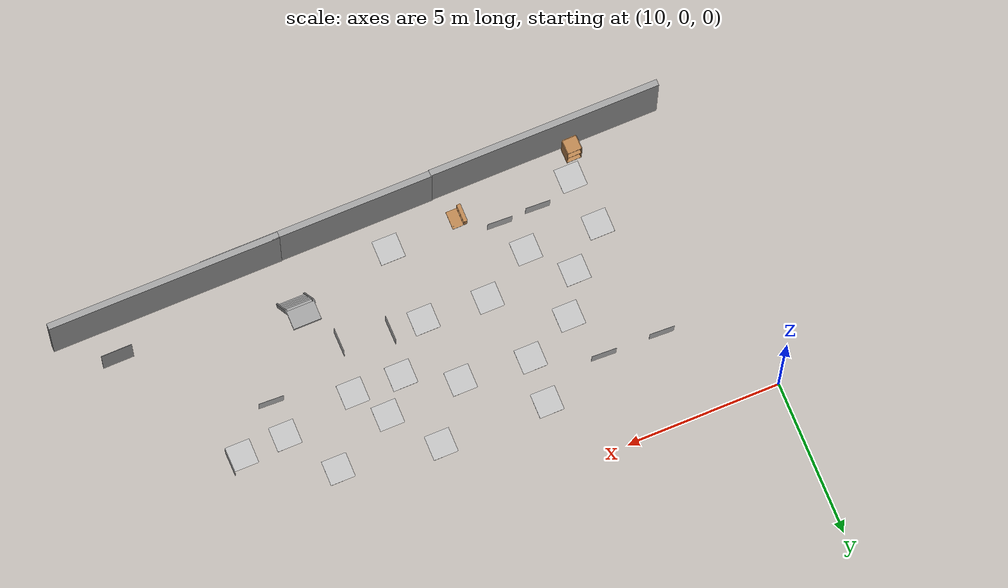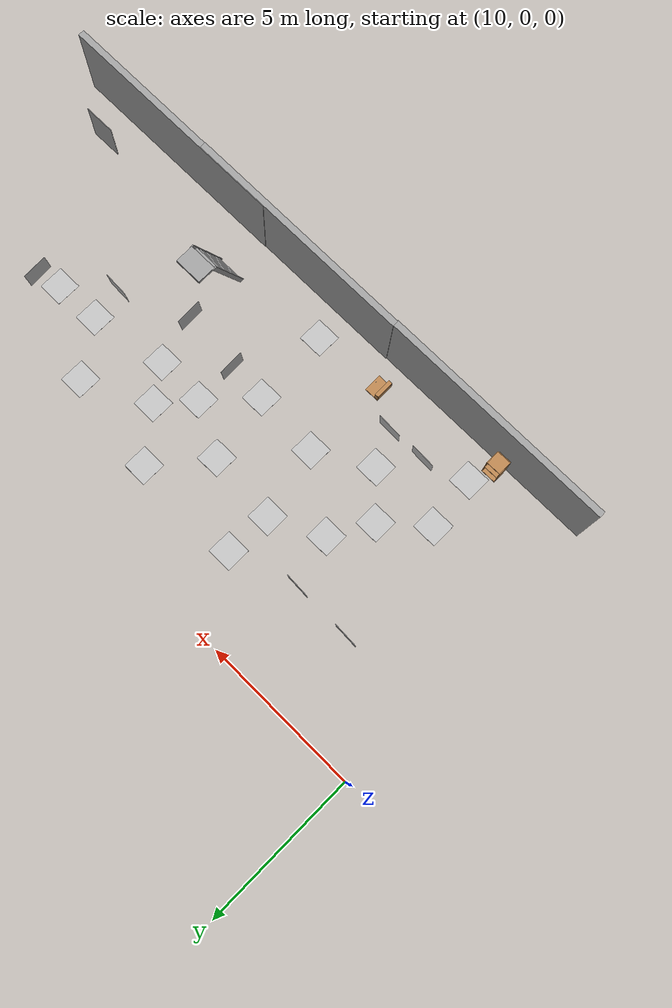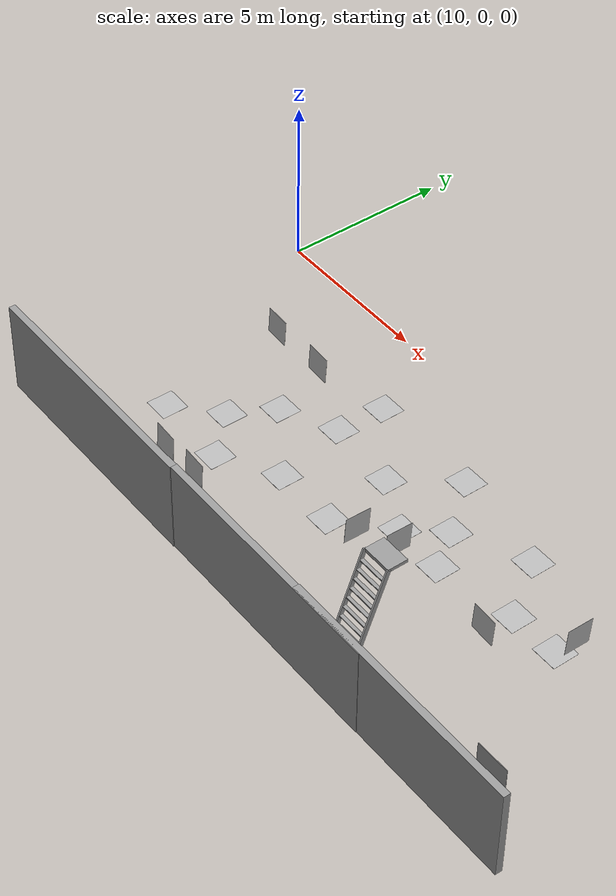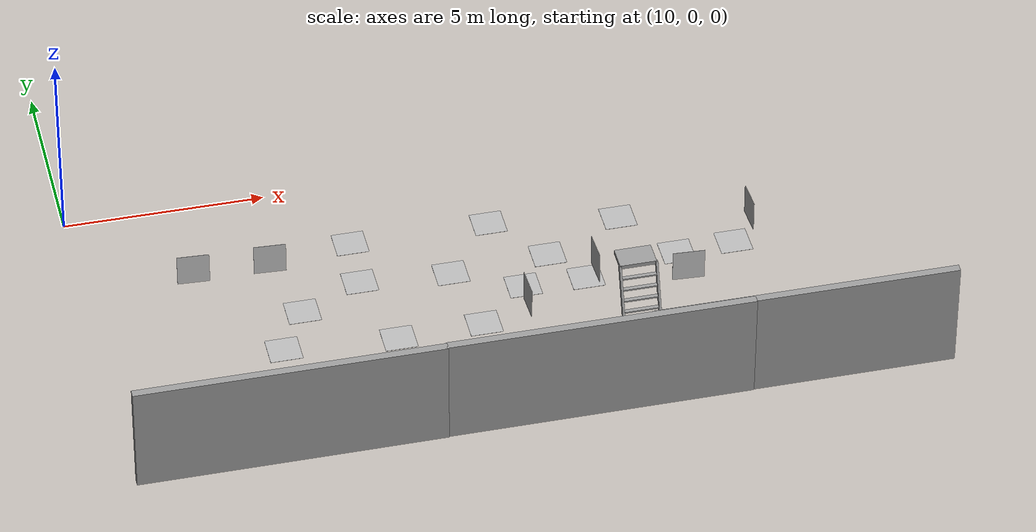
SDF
<sdf version="1.6">
 <world name="factory">
  <model name="ladder_70deg_0rails">
   <static>1</static>
   <link name="step0">
    <pose>0 0.097059 0.266667 0 -0 0</pose>
    <inertial>
     <mass>9.75482</mass>
     <inertia>
      <ixx>0.00957124</ixx>
      <iyy>0.65963</iyy>
      <izz>0.666842</izz>
      <ixy>0</ixy>
      <ixz>0</ixz>
      <iyz>0</iyz>
     </inertia>
    </inertial>
    <collision name="collision"><geometry><box><size>0.9 0.1016 0.0381</size></box></geometry></collision>
    <visual name="visual">
     <geometry><box><size>0.9 0.1016 0.0381</size></box></geometry>
     <material>
      <script><uri>file://media/materials/scripts/gazebo.material</uri><name>Gazebo/Grey</name></script>
     </material>
    </visual>
   </link>
   <link name="step1">
    <pose>0 0.194117 0.533333 0 -0 0</pose>
    <inertial>
     <mass>9.75482</mass>
     <inertia>
      <ixx>0.00957124</ixx>
      <iyy>0.65963</iyy>
      <izz>0.666842</izz>
      <ixy>0</ixy>
      <ixz>0</ixz>
      <iyz>0</iyz>
     </inertia>
    </inertial>
    <collision name="collision"><geometry><box><size>0.9 0.1016 0.0381</size></box></geometry></collision>
    <visual name="visual">
     <geometry><box><size>0.9 0.1016 0.0381</size></box></geometry>
     <material>
      <script><uri>file://media/materials/scripts/gazebo.material</uri><name>Gazebo/Grey</name></script>
     </material>
    </visual>
   </link>
   <link name="step2">
    <pose>0 0.291176 0.8 0 -0 0</pose>
    <inertial>
     <mass>9.75482</mass>
     <inertia>
      <ixx>0.00957124</ixx>
      <iyy>0.65963</iyy>
      <izz>0.666842</izz>
      <ixy>0</ixy>
      <ixz>0</ixz>
      <iyz>0</iyz>
     </inertia>
    </inertial>
    <collision name="collision"><geometry><box><size>0.9 0.1016 0.0381</size></box></geometry></collision>
    <visual name="visual">
     <geometry><box><size>0.9 0.1016 0.0381</size></box></geometry>
     <material>
      <script><uri>file://media/materials/scripts/gazebo.material</uri><name>Gazebo/Grey</name></script>
     </material>
    </visual>
   </link>
   <link name="step3">
    <pose>0 0.388235 1.06667 0 -0 0</pose>
    <inertial>
     <mass>9.75482</mass>
     <inertia>
      <ixx>0.00957124</ixx>
      <iyy>0.65963</iyy>
      <izz>0.666842</izz>
      <ixy>0</ixy>
      <ixz>0</ixz>
      <iyz>0</iyz>
     </inertia>
    </inertial>
    <collision name="collision"><geometry><box><size>0.9 0.1016 0.0381</size></box></geometry></collision>
    <visual name="visual">
     <geometry><box><size>0.9 0.1016 0.0381</size></box></geometry>
     <material>
      <script><uri>file://media/materials/scripts/gazebo.material</uri><name>Gazebo/Grey</name></script>
     </material>
    </visual>
   </link>
   <link name="step4">
    <pose>0 0.485294 1.33333 0 -0 0</pose>
    <inertial>
     <mass>9.75482</mass>
     <inertia>
      <ixx>0.00957124</ixx>
      <iyy>0.65963</iyy>
      <izz>0.666842</izz>
      <ixy>0</ixy>
      <ixz>0</ixz>
      <iyz>0</iyz>
     </inertia>
    </inertial>
    <collision name="collision"><geometry><box><size>0.9 0.1016 0.0381</size></box></geometry></collision>
    <visual name="visual">
     <geometry><box><size>0.9 0.1016 0.0381</size></box></geometry>
     <material>
      <script><uri>file://media/materials/scripts/gazebo.material</uri><name>Gazebo/Grey</name></script>
     </material>
    </visual>
   </link>
   <link name="step5">
    <pose>0 0.582352 1.6 0 -0 0</pose>
    <inertial>
     <mass>9.75482</mass>
     <inertia>
      <ixx>0.00957124</ixx>
      <iyy>0.65963</iyy>
      <izz>0.666842</izz>
      <ixy>0</ixy>
      <ixz>0</ixz>
      <iyz>0</iyz>
     </inertia>
    </inertial>
    <collision name="collision"><geometry><box><size>0.9 0.1016 0.0381</size></box></geometry></collision>
    <visual name="visual">
     <geometry><box><size>0.9 0.1016 0.0381</size></box></geometry>
     <material>
      <script><uri>file://media/materials/scripts/gazebo.material</uri><name>Gazebo/Grey</name></script>
     </material>
    </visual>
   </link>
   <link name="step6">
    <pose>0 0.679411 1.86667 0 -0 0</pose>
    <inertial>
     <mass>9.75482</mass>
     <inertia>
      <ixx>0.00957124</ixx>
      <iyy>0.65963</iyy>
      <izz>0.666842</izz>
      <ixy>0</ixy>
      <ixz>0</ixz>
      <iyz>0</iyz>
     </inertia>
    </inertial>
    <collision name="collision"><geometry><box><size>0.9 0.1016 0.0381</size></box></geometry></collision>
    <visual name="visual">
     <geometry><box><size>0.9 0.1016 0.0381</size></box></geometry>
     <material>
      <script><uri>file://media/materials/scripts/gazebo.material</uri><name>Gazebo/Grey</name></script>
     </material>
    </visual>
   </link>
   <link name="step7">
    <pose>0 0.77647 2.13333 0 -0 0</pose>
    <inertial>
     <mass>9.75482</mass>
     <inertia>
      <ixx>0.00957124</ixx>
      <iyy>0.65963</iyy>
      <izz>0.666842</izz>
      <ixy>0</ixy>
      <ixz>0</ixz>
      <iyz>0</iyz>
     </inertia>
    </inertial>
    <collision name="collision"><geometry><box><size>0.9 0.1016 0.0381</size></box></geometry></collision>
    <visual name="visual">
     <geometry><box><size>0.9 0.1016 0.0381</size></box></geometry>
     <material>
      <script><uri>file://media/materials/scripts/gazebo.material</uri><name>Gazebo/Grey</name></script>
     </material>
    </visual>
   </link>
   <link name="landing">
    <pose>0 1.17353 2.4 0 -0 0</pose>
    <inertial>
     <mass>57.6072</mass>
     <inertia><ixx>1.73518</ixx><iyy>3.89545</iyy><izz>5.6167</izz><ixy>0</ixy><ixz>0</ixz><iyz>0</iyz></inertia>
    </inertial>
    <collision name="collision"><geometry><box><size>0.9 0.6 0.1016</size></box></geometry></collision>
    <visual name="visual">
     <geometry><box><size>0.9 0.6 0.1016</size></box></geometry>
     <material>
      <script><uri>file://media/materials/scripts/gazebo.material</uri><name>Gazebo/Grey</name></script>
     </material>
    </visual>
   </link>
   <link name="left_side_wall">
    <pose>-0.45 0.436764 1.2 1.22173 -0 0</pose>
    <collision name="collision"><geometry><box><size>0.0508 2.63403 0.13</size></box></geometry></collision>
    <visual name="visual">
     <geometry><box><size>0.0508 2.63403 0.13</size></box></geometry>
     <material>
      <script><uri>file://media/materials/scripts/gazebo.material</uri><name>Gazebo/Grey</name></script>
     </material>
    </visual>
   </link>
   <link name="right_side_wall">
    <pose>0.45 0.436764 1.2 1.22173 -0 0</pose>
    <collision name="collision"><geometry><box><size>0.0508 2.63403 0.13</size></box></geometry></collision>
    <visual name="visual">
     <geometry><box><size>0.0508 2.63403 0.13</size></box></geometry>
     <material>
      <script><uri>file://media/materials/scripts/gazebo.material</uri><name>Gazebo/Grey</name></script>
     </material>
    </visual>
   </link>
   <pose>22.7475 -8.13571 0 0 -0 0</pose>
  </model>
  <model name="grey_wall_clone_0">
   <static>1</static>
   <link name="link">
    <pose>0 0 1.4 0 -0 0</pose>
    <collision name="collision"><geometry><box><size>7.5 0.2 2.8</size></box></geometry></collision>
    <visual name="visual">
     <cast_shadows>0</cast_shadows>
     <geometry><box><size>7.5 0.2 2.8</size></box></geometry>
     <material>
      <script>
       <uri>model://grey_wall/materials/scripts</uri>
       <uri>model://grey_wall/materials/textures</uri>
       <name>vrc/grey_wall</name>
      </script>
     </material>
    </visual>
   </link>
   <pose>13.8347 -9.52636 0 0 -0 0</pose>
  </model>
  <model name="grey_wall_clone_1">
   <static>1</static>
   <link name="link">
    <pose>0 0 1.4 0 -0 0</pose>
    <collision name="collision"><geometry><box><size>7.5 0.2 2.8</size></box></geometry></collision>
    <visual name="visual">
     <cast_shadows>0</cast_shadows>
     <geometry><box><size>7.5 0.2 2.8</size></box></geometry>
     <material>
      <script>
       <uri>model://grey_wall/materials/scripts</uri>
       <uri>model://grey_wall/materials/textures</uri>
       <name>vrc/grey_wall</name>
      </script>
     </material>
    </visual>
   </link>
   <pose>21.3028 -9.50574 0 0 -0 0</pose>
  </model>
  <model name="grey_wall_clone_2">
   <static>1</static>
   <link name="link">
    <pose>0 0 1.4 0 -0 0</pose>
    <collision name="collision"><geometry><box><size>7.5 0.2 2.8</size></box></geometry></collision>
    <visual name="visual">
     <cast_shadows>0</cast_shadows>
     <geometry><box><size>7.5 0.2 2.8</size></box></geometry>
     <material>
      <script>
       <uri>model://grey_wall/materials/scripts</uri>
       <uri>model://grey_wall/materials/textures</uri>
       <name>vrc/grey_wall</name>
      </script>
     </material>
    </visual>
   </link>
   <pose>26.2939 -9.49059 0 0 -0 0</pose>
  </model>
  <model name="unit_box">
   <pose>28.3446 -8.3382 0.751562 -0 -1e-06 0.005665</pose>
   <link name="link">
    <inertial>
     <mass>1</mass>
     <inertia>
      <ixx>0.166667</ixx>
      <ixy>0</ixy>
      <ixz>0</ixz>
      <iyy>0.166667</iyy>
      <iyz>0</iyz>
      <izz>0.166667</izz>
     </inertia>
    </inertial>
    <collision name="collision"><geometry><box><size>1 0.0133954 1.50312</size></box></geometry></collision>
    <visual name="visual">
     <geometry><box><size>1 0.0133954 1.50312</size></box></geometry>
     <material>
      <script><name>Gazebo/Grey</name><uri>file://media/materials/scripts/gazebo.material</uri></script>
     </material>
    </visual>
   </link>
  </model>
  <model name="cabinet">
   <static>1</static>
   <link name="cabinet_bottom_plate">
    <inertial>
     <pose>0 0 -1 0 -0 0</pose>
     <inertia><ixx>2.05</ixx><ixy>0</ixy><ixz>0</ixz><iyy>2.05</iyy><iyz>0</iyz><izz>2.05</izz></inertia>
     <mass>25</mass>
    </inertial>
    <collision name="cabinet_bottom_plate_geom">
     <pose>0 0 0.01 0 -0 0</pose>
     <geometry><box><size>0.45 0.45 0.02</size></box></geometry>
    </collision>
    <visual name="cabinet_bottom_plate_geom_visual">
     <pose>0 0 0.01 0 -0 0</pose>
     <geometry><box><size>0.45 0.45 0.02</size></box></geometry>
     <material>
      <script><uri>file://media/materials/scripts/gazebo.material</uri><name>Gazebo/Wood</name></script>
     </material>
    </visual>
    <collision name="cabinet_bottom_plate_geom_cabinet_back_plate">
     <pose>0.235 0 0.51 0 -0 0</pose>
     <geometry><box><size>0.02 0.45 1.02</size></box></geometry>
    </collision>
    <visual name="cabinet_bottom_plate_geom_cabinet_back_plate_visual">
     <pose>0.235 0 0.51 0 -0 0</pose>
     <geometry><box><size>0.02 0.45 1.02</size></box></geometry>
     <material>
      <script><uri>file://media/materials/scripts/gazebo.material</uri><name>Gazebo/Wood</name></script>
     </material>
    </visual>
    <collision name="cabinet_bottom_plate_geom_cabinet_left_plate">
     <pose>0 0.235 0.51 0 -0 0</pose>
     <geometry><box><size>0.45 0.02 1.02</size></box></geometry>
    </collision>
    <visual name="cabinet_bottom_plate_geom_cabinet_left_plate_visual">
     <pose>0 0.235 0.51 0 -0 0</pose>
     <geometry><box><size>0.45 0.02 1.02</size></box></geometry>
     <material>
      <script><uri>file://media/materials/scripts/gazebo.material</uri><name>Gazebo/Wood</name></script>
     </material>
    </visual>
    <collision name="cabinet_bottom_plate_geom_cabinet_middle_plate">
     <pose>0 0 0.51 0 -0 0</pose>
     <geometry><box><size>0.45 0.45 0.02</size></box></geometry>
    </collision>
    <visual name="cabinet_bottom_plate_geom_cabinet_middle_plate_visual">
     <pose>0 0 0.51 0 -0 0</pose>
     <geometry><box><size>0.45 0.45 0.02</size></box></geometry>
     <material>
      <script><uri>file://media/materials/scripts/gazebo.material</uri><name>Gazebo/Wood</name></script>
     </material>
    </visual>
    <collision name="cabinet_bottom_plate_geom_cabinet_right_plate">
     <pose>0 -0.235 0.51 0 -0 0</pose>
     <geometry><box><size>0.45 0.02 1.02</size></box></geometry>
    </collision>
    <visual name="cabinet_bottom_plate_geom_cabinet_right_plate_visual">
     <pose>0 -0.235 0.51 0 -0 0</pose>
     <geometry><box><size>0.45 0.02 1.02</size></box></geometry>
     <material>
      <script><uri>file://media/materials/scripts/gazebo.material</uri><name>Gazebo/Wood</name></script>
     </material>
    </visual>
    <collision name="cabinet_bottom_plate_geom_cabinet_top_plate">
     <pose>0 0 1.01 0 -0 0</pose>
     <geometry><box><size>0.45 0.45 0.02</size></box></geometry>
    </collision>
    <visual name="cabinet_bottom_plate_geom_cabinet_top_plate_visual">
     <pose>0 0 1.01 0 -0 0</pose>
     <geometry><box><size>0.45 0.45 0.02</size></box></geometry>
     <material>
      <script><uri>file://media/materials/scripts/gazebo.material</uri><name>Gazebo/Wood</name></script>
     </material>
    </visual>
   </link>
   <pose>13.0394 -9.13497 0.037072 0 0 -1.55676</pose>
  </model>
  <model name="wooden_case">
   <link name="base">
    <pose>0 0 0.024 0 -0 0</pose>
    <inertial>
     <pose>-0.022184 0 0.171592 0 -0 0</pose>
     <mass>3.96264</mass>
     <inertia>
      <ixx>0.213536</ixx>
      <ixy>0</ixy>
      <ixz>0.000779377</ixz>
      <iyy>0.0708943</iyy>
      <iyz>0</iyz>
      <izz>0.154604</izz>
     </inertia>
    </inertial>
    <collision name="collision_back">
     <pose>-0.053975 0 0.1778 0 -0 0</pose>
     <geometry><box><size>0.01905 0.5461 0.3175</size></box></geometry>
     <surface>
      <contact>
       <poissons_ratio>0.347</poissons_ratio>
       <elastic_modulus>8.8e+09</elastic_modulus>
       <ode><kp>100000</kp><kd>100</kd><max_vel>100</max_vel><min_depth>0.001</min_depth></ode>
      </contact>
      <friction>
       <torsional>
        <coefficient>1</coefficient>
        <use_patch_radius>0</use_patch_radius>
        <surface_radius>0.01</surface_radius>
       </torsional>
      </friction>
     </surface>
    </collision>
    <visual name="visual_back">
     <pose>-0.053975 0 0.1778 0 -0 0</pose>
     <geometry><box><size>0.01905 0.5461 0.3175</size></box></geometry>
     <material>
      <script><uri>file://media/materials/scripts/gazebo.material</uri><name>Gazebo/Wood</name></script>
     </material>
    </visual>
    <collision name="collision_bottom">
     <pose>0 0 0.009525 0 -0 0</pose>
     <geometry><box><size>0.127 0.5842 0.01905</size></box></geometry>
     <surface>
      <contact>
       <poissons_ratio>0.347</poissons_ratio>
       <elastic_modulus>8.8e+09</elastic_modulus>
       <ode><kp>100000</kp><kd>100</kd><max_vel>100</max_vel><min_depth>0.001</min_depth></ode>
      </contact>
      <friction>
       <torsional>
        <coefficient>1</coefficient>
        <use_patch_radius>0</use_patch_radius>
        <surface_radius>0.01</surface_radius>
       </torsional>
      </friction>
     </surface>
    </collision>
    <visual name="visual_bottom">
     <pose>0 0 0.009525 0 -0 0</pose>
     <geometry><box><size>0.127 0.5842 0.01905</size></box></geometry>
     <material>
      <script><uri>file://media/materials/scripts/gazebo.material</uri><name>Gazebo/Wood</name></script>
     </material>
    </visual>
    <collision name="collision_top">
     <pose>0 0 0.346075 0 -0 0</pose>
     <geometry><box><size>0.127 0.5842 0.01905</size></box></geometry>
     <surface>
      <contact>
       <poissons_ratio>0.347</poissons_ratio>
       <elastic_modulus>8.8e+09</elastic_modulus>
       <ode><kp>100000</kp><kd>100</kd><max_vel>100</max_vel><min_depth>0.001</min_depth></ode>
      </contact>
      <friction>
       <torsional>
        <coefficient>1</coefficient>
        <use_patch_radius>0</use_patch_radius>
        <surface_radius>0.01</surface_radius>
       </torsional>
      </friction>
     </surface>
    </collision>
    <visual name="visual_top">
     <pose>0 0 0.346075 0 -0 0</pose>
     <geometry><box><size>0.127 0.5842 0.01905</size></box></geometry>
     <material>
      <script><uri>file://media/materials/scripts/gazebo.material</uri><name>Gazebo/Wood</name></script>
     </material>
    </visual>
    <collision name="collision_left">
     <pose>0 -0.282575 0.1778 0 -0 0</pose>
     <geometry><box><size>0.127 0.01905 0.3175</size></box></geometry>
     <surface>
      <contact>
       <poissons_ratio>0.347</poissons_ratio>
       <elastic_modulus>8.8e+09</elastic_modulus>
       <ode><kp>100000</kp><kd>100</kd><max_vel>100</max_vel><min_depth>0.001</min_depth></ode>
      </contact>
      <friction>
       <torsional>
        <coefficient>1</coefficient>
        <use_patch_radius>0</use_patch_radius>
        <surface_radius>0.01</surface_radius>
       </torsional>
      </friction>
     </surface>
    </collision>
    <visual name="visual_left">
     <pose>0 -0.282575 0.1778 0 -0 0</pose>
     <geometry><box><size>0.127 0.01905 0.3175</size></box></geometry>
     <material>
      <script><uri>file://media/materials/scripts/gazebo.material</uri><name>Gazebo/Wood</name></script>
     </material>
    </visual>
    <collision name="collision_right">
     <pose>0 0.282575 0.1778 0 -0 0</pose>
     <geometry><box><size>0.127 0.01905 0.3175</size></box></geometry>
     <surface>
      <contact>
       <poissons_ratio>0.347</poissons_ratio>
       <elastic_modulus>8.8e+09</elastic_modulus>
       <ode><kp>100000</kp><kd>100</kd><max_vel>100</max_vel><min_depth>0.001</min_depth></ode>
      </contact>
      <friction>
       <torsional>
        <coefficient>1</coefficient>
        <use_patch_radius>0</use_patch_radius>
        <surface_radius>0.01</surface_radius>
       </torsional>
      </friction>
     </surface>
    </collision>
    <visual name="visual_right">
     <pose>0 0.282575 0.1778 0 -0 0</pose>
     <geometry><box><size>0.127 0.01905 0.3175</size></box></geometry>
     <material>
      <script><uri>file://media/materials/scripts/gazebo.material</uri><name>Gazebo/Wood</name></script>
     </material>
    </visual>
    <collision name="collision_block_left">
     <pose>0.0095 -0.2151 -0.012 0 -0 0</pose>
     <geometry><box><size>0.108 0.05 0.024</size></box></geometry>
     <surface>
      <contact>
       <poissons_ratio>0.347</poissons_ratio>
       <elastic_modulus>8.8e+09</elastic_modulus>
       <ode><kp>100000</kp><kd>100</kd><max_vel>100</max_vel><min_depth>0.001</min_depth></ode>
      </contact>
      <friction>
       <torsional>
        <coefficient>1</coefficient>
        <use_patch_radius>0</use_patch_radius>
        <surface_radius>0.01</surface_radius>
       </torsional>
      </friction>
     </surface>
    </collision>
    <visual name="visual_block_left">
     <pose>0.0095 -0.2151 -0.012 0 -0 0</pose>
     <geometry><box><size>0.108 0.05 0.024</size></box></geometry>
     <material>
      <script><uri>file://media/materials/scripts/gazebo.material</uri><name>Gazebo/Wood</name></script>
     </material>
    </visual>
    <collision name="collision_block_right">
     <pose>0.0095 0.2151 -0.012 0 -0 0</pose>
     <geometry><box><size>0.108 0.05 0.024</size></box></geometry>
     <surface>
      <contact>
       <poissons_ratio>0.347</poissons_ratio>
       <elastic_modulus>8.8e+09</elastic_modulus>
       <ode><kp>100000</kp><kd>100</kd><max_vel>100</max_vel><min_depth>0.001</min_depth></ode>
      </contact>
      <friction>
       <torsional>
        <coefficient>1</coefficient>
        <use_patch_radius>0</use_patch_radius>
        <surface_radius>0.01</surface_radius>
       </torsional>
      </friction>
     </surface>
    </collision>
    <visual name="visual_block_right">
     <pose>0.0095 0.2151 -0.012 0 -0 0</pose>
     <geometry><box><size>0.108 0.05 0.024</size></box></geometry>
     <material>
      <script><uri>file://media/materials/scripts/gazebo.material</uri><name>Gazebo/Wood</name></script>
     </material>
    </visual>
   </link>
   <link name="lid">
    <pose>0.243775 0 0.009525 0 -0 0</pose>
    <inertial>
     <mass>1.97874</mass>
     <inertia>
      <ixx>0.0563367</ixx>
      <ixy>0</ixy>
      <ixz>0</ixz>
      <iyy>0.020911</iyy>
      <iyz>0</iyz>
      <izz>0.0771281</izz>
     </inertia>
    </inertial>
    <collision name="collision">
     <geometry><box><size>0.3556 0.5842 0.01905</size></box></geometry>
     <surface>
      <contact>
       <poissons_ratio>0.347</poissons_ratio>
       <elastic_modulus>8.8e+09</elastic_modulus>
       <ode><kp>100000</kp><kd>100</kd><max_vel>100</max_vel><min_depth>0.001</min_depth></ode>
      </contact>
      <friction>
       <torsional>
        <coefficient>1</coefficient>
        <use_patch_radius>0</use_patch_radius>
        <surface_radius>0.01</surface_radius>
       </torsional>
      </friction>
     </surface>
    </collision>
    <visual name="visual">
     <geometry><box><size>0.3556 0.5842 0.01905</size></box></geometry>
     <material>
      <script><uri>file://media/materials/scripts/gazebo.material</uri><name>Gazebo/Wood</name></script>
     </material>
    </visual>
    <visual name="tee_nut_1">
     <pose>0.122 -0.216 0 0 -0 0</pose>
     <geometry><cylinder><radius>0.00635</radius><length>0.0192405</length></cylinder></geometry>
     <material>
      <script><uri>file://media/materials/scripts/gazebo.material</uri><name>Gazebo/Grey</name></script>
     </material>
    </visual>
    <visual name="tee_nut_2">
     <pose>0.122 -0.088 0 0 -0 0</pose>
     <geometry><cylinder><radius>0.00635</radius><length>0.0192405</length></cylinder></geometry>
     <material>
      <script><uri>file://media/materials/scripts/gazebo.material</uri><name>Gazebo/Grey</name></script>
     </material>
    </visual>
    <visual name="tee_nut_3">
     <pose>0.122 0.088 0 0 -0 0</pose>
     <geometry><cylinder><radius>0.00635</radius><length>0.0192405</length></cylinder></geometry>
     <material>
      <script><uri>file://media/materials/scripts/gazebo.material</uri><name>Gazebo/Grey</name></script>
     </material>
    </visual>
    <visual name="tee_nut_4">
     <pose>0.122 0.216 0 0 -0 0</pose>
     <geometry><cylinder><radius>0.00635</radius><length>0.0192405</length></cylinder></geometry>
     <material>
      <script><uri>file://media/materials/scripts/gazebo.material</uri><name>Gazebo/Grey</name></script>
     </material>
    </visual>
   </link>
   <joint name="lid_hinge" type="revolute">
    <pose>-0.1778 0 0.01905 0 -0 0</pose>
    <parent>base</parent>
    <child>lid</child>
    <axis>
     <xyz>0 1 0</xyz>
     <limit><upper>0.523599</upper><lower>-1.5708</lower></limit>
     <use_parent_model_frame>0</use_parent_model_frame>
     <dynamics><spring_reference>0</spring_reference><spring_stiffness>0</spring_stiffness></dynamics>
    </axis>
   </joint>
   <pose>16.9031 -8.59915 -0.001057 0 -0.000442 -1e-06</pose>
  </model>
  <model name="kalibr_tag_clone_0_clone_clone_clone_4">
   <static>1</static>
   <link name="link">
    <inertial>
     <mass>0.1</mass>
     <inertia>
      <ixx>0.000166667</ixx>
      <iyy>0.000166667</iyy>
      <izz>0.000166667</izz>
      <ixy>0</ixy>
      <ixz>0</ixz>
      <iyz>0</iyz>
     </inertia>
    </inertial>
    <collision name="collision"><geometry><box><size>0.8 0.8 0.005</size></box></geometry></collision>
    <visual name="visual">
     <geometry><box><size>0.8 0.8 0.005</size></box></geometry>
     <material>
      <script>
       <uri>model://kalibr_tag/materials/scripts</uri>
       <uri>model://kalibr_tag/materials/textures</uri>
       <name>Kalibr_tag/Diffuse</name>
      </script>
     </material>
    </visual>
   </link>
   <pose>21.3892 -3.67099 -0.000701 0 -0 0</pose>
  </model>
  <model name="kalibr_tag_clone_clone_clone_clone_clone_clone_clone_1">
   <static>1</static>
   <link name="link">
    <inertial>
     <mass>0.1</mass>
     <inertia>
      <ixx>0.000166667</ixx>
      <iyy>0.000166667</iyy>
      <izz>0.000166667</izz>
      <ixy>0</ixy>
      <ixz>0</ixz>
      <iyz>0</iyz>
     </inertia>
    </inertial>
    <collision name="collision"><geometry><box><size>0.8 0.8 0.005</size></box></geometry></collision>
    <visual name="visual">
     <geometry><box><size>0.8 0.8 0.005</size></box></geometry>
     <material>
      <script>
       <uri>model://kalibr_tag/materials/scripts</uri>
       <uri>model://kalibr_tag/materials/textures</uri>
       <name>Kalibr_tag/Diffuse</name>
      </script>
     </material>
    </visual>
   </link>
   <pose>15.9624 -7.85399 0.415469 1.62908 -0.00671 3.09537</pose>
  </model>
  <model name="kalibr_tag_clone_clone_clone_clone_clone_clone_clone_3">
   <static>1</static>
   <link name="link">
    <inertial>
     <mass>0.1</mass>
     <inertia>
      <ixx>0.000166667</ixx>
      <iyy>0.000166667</iyy>
      <izz>0.000166667</izz>
      <ixy>0</ixy>
      <ixz>0</ixz>
      <iyz>0</iyz>
     </inertia>
    </inertial>
    <collision name="collision"><geometry><box><size>0.8 0.8 0.005</size></box></geometry></collision>
    <visual name="visual">
     <geometry><box><size>0.8 0.8 0.005</size></box></geometry>
     <material>
      <script>
       <uri>model://kalibr_tag/materials/scripts</uri>
       <uri>model://kalibr_tag/materials/textures</uri>
       <name>Kalibr_tag/Diffuse</name>
      </script>
     </material>
    </visual>
   </link>
   <pose>24.5413 -5.30324 0.418062 1.62908 -0.00671 3.09537</pose>
  </model>
  <model name="kalibr_tag_clone_0_clone_clone_clone_4_clone_0">
   <static>1</static>
   <link name="link">
    <inertial>
     <mass>0.1</mass>
     <inertia>
      <ixx>0.000166667</ixx>
      <iyy>0.000166667</iyy>
      <izz>0.000166667</izz>
      <ixy>0</ixy>
      <ixz>0</ixz>
      <iyz>0</iyz>
     </inertia>
    </inertial>
    <collision name="collision"><geometry><box><size>0.8 0.8 0.005</size></box></geometry></collision>
    <visual name="visual">
     <geometry><box><size>0.8 0.8 0.005</size></box></geometry>
     <material>
      <script>
       <uri>model://kalibr_tag/materials/scripts</uri>
       <uri>model://kalibr_tag/materials/textures</uri>
       <name>Kalibr_tag/Diffuse</name>
      </script>
     </material>
    </visual>
   </link>
   <pose>24.5128 -4.27412 -0.000701 0 -0 0</pose>
  </model>
  <model name="kalibr_tag_clone_0_clone_clone_clone_4_clone_2">
   <static>1</static>
   <link name="link">
    <inertial>
     <mass>0.1</mass>
     <inertia>
      <ixx>0.000166667</ixx>
      <iyy>0.000166667</iyy>
      <izz>0.000166667</izz>
      <ixy>0</ixy>
      <ixz>0</ixz>
      <iyz>0</iyz>
     </inertia>
    </inertial>
    <collision name="collision"><geometry><box><size>0.8 0.8 0.005</size></box></geometry></collision>
    <visual name="visual">
     <geometry><box><size>0.8 0.8 0.005</size></box></geometry>
     <material>
      <script>
       <uri>model://kalibr_tag/materials/scripts</uri>
       <uri>model://kalibr_tag/materials/textures</uri>
       <name>Kalibr_tag/Diffuse</name>
      </script>
     </material>
    </visual>
   </link>
   <pose>18.9195 -3.83567 -0.000701 0 -0 0</pose>
  </model>
  <model name="kalibr_tag_clone_0_clone_clone_clone_4_clone_1_clone">
   <static>1</static>
   <link name="link">
    <inertial>
     <mass>0.1</mass>
     <inertia>
      <ixx>0.000166667</ixx>
      <iyy>0.000166667</iyy>
      <izz>0.000166667</izz>
      <ixy>0</ixy>
      <ixz>0</ixz>
      <iyz>0</iyz>
     </inertia>
    </inertial>
    <collision name="collision"><geometry><box><size>0.8 0.8 0.005</size></box></geometry></collision>
    <visual name="visual">
     <geometry><box><size>0.8 0.8 0.005</size></box></geometry>
     <material>
      <script>
       <uri>model://kalibr_tag/materials/scripts</uri>
       <uri>model://kalibr_tag/materials/textures</uri>
       <name>Kalibr_tag/Diffuse</name>
      </script>
     </material>
    </visual>
   </link>
   <pose>23.4168 -2.68481 -0.000701 0 -0 0</pose>
  </model>
  <model name="kalibr_tag_clone_0_clone_clone_clone_4_clone_2_clone">
   <static>1</static>
   <link name="link">
    <inertial>
     <mass>0.1</mass>
     <inertia>
      <ixx>0.000166667</ixx>
      <iyy>0.000166667</iyy>
      <izz>0.000166667</izz>
      <ixy>0</ixy>
      <ixz>0</ixz>
      <iyz>0</iyz>
     </inertia>
    </inertial>
    <collision name="collision"><geometry><box><size>0.8 0.8 0.005</size></box></geometry></collision>
    <visual name="visual">
     <geometry><box><size>0.8 0.8 0.005</size></box></geometry>
     <material>
      <script>
       <uri>model://kalibr_tag/materials/scripts</uri>
       <uri>model://kalibr_tag/materials/textures</uri>
       <name>Kalibr_tag/Diffuse</name>
      </script>
     </material>
    </visual>
   </link>
   <pose>19.2555 -5.98495 0.146438 0 -0 0</pose>
  </model>
  <model name="kalibr_tag_clone_0_clone_clone_clone_clone_10_clone_6">
   <static>1</static>
   <link name="link">
    <inertial>
     <mass>0.1</mass>
     <inertia>
      <ixx>0.000166667</ixx>
      <iyy>0.000166667</iyy>
      <izz>0.000166667</izz>
      <ixy>0</ixy>
      <ixz>0</ixz>
      <iyz>0</iyz>
     </inertia>
    </inertial>
    <collision name="collision"><geometry><box><size>0.8 0.8 0.005</size></box></geometry></collision>
    <visual name="visual">
     <geometry><box><size>0.8 0.8 0.005</size></box></geometry>
     <material>
      <script>
       <uri>model://kalibr_tag/materials/scripts</uri>
       <uri>model://kalibr_tag/materials/textures</uri>
       <name>Kalibr_tag/Diffuse</name>
      </script>
     </material>
    </visual>
   </link>
   <pose>13.3495 -8.46088 -0.000701 0 -0 0</pose>
  </model>
  <model name="kalibr_tag_clone_0_clone_clone_clone_clone_10_clone_7">
   <static>1</static>
   <link name="link">
    <inertial>
     <mass>0.1</mass>
     <inertia>
      <ixx>0.000166667</ixx>
      <iyy>0.000166667</iyy>
      <izz>0.000166667</izz>
      <ixy>0</ixy>
      <ixz>0</ixz>
      <iyz>0</iyz>
     </inertia>
    </inertial>
    <collision name="collision"><geometry><box><size>0.8 0.8 0.005</size></box></geometry></collision>
    <visual name="visual">
     <geometry><box><size>0.8 0.8 0.005</size></box></geometry>
     <material>
      <script>
       <uri>model://kalibr_tag/materials/scripts</uri>
       <uri>model://kalibr_tag/materials/textures</uri>
       <name>Kalibr_tag/Diffuse</name>
      </script>
     </material>
    </visual>
   </link>
   <pose>13.147 -6.77351 -0.000701 0 -0 0</pose>
  </model>
  <model name="kalibr_tag_clone_0_clone_clone_clone_clone_10_clone_8">
   <static>1</static>
   <link name="link">
    <inertial>
     <mass>0.1</mass>
     <inertia>
      <ixx>0.000166667</ixx>
      <iyy>0.000166667</iyy>
      <izz>0.000166667</izz>
      <ixy>0</ixy>
      <ixz>0</ixz>
      <iyz>0</iyz>
     </inertia>
    </inertial>
    <collision name="collision"><geometry><box><size>0.8 0.8 0.005</size></box></geometry></collision>
    <visual name="visual">
     <geometry><box><size>0.8 0.8 0.005</size></box></geometry>
     <material>
      <script>
       <uri>model://kalibr_tag/materials/scripts</uri>
       <uri>model://kalibr_tag/materials/textures</uri>
       <name>Kalibr_tag/Diffuse</name>
      </script>
     </material>
    </visual>
   </link>
   <pose>14.3797 -5.69252 -0.000701 0 -0 0</pose>
  </model>
  <model name="kalibr_tag_clone_0_clone_clone_clone_clone_10_clone_9">
   <static>1</static>
   <link name="link">
    <inertial>
     <mass>0.1</mass>
     <inertia>
      <ixx>0.000166667</ixx>
      <iyy>0.000166667</iyy>
      <izz>0.000166667</izz>
      <ixy>0</ixy>
      <ixz>0</ixz>
      <iyz>0</iyz>
     </inertia>
    </inertial>
    <collision name="collision"><geometry><box><size>0.8 0.8 0.005</size></box></geometry></collision>
    <visual name="visual">
     <geometry><box><size>0.8 0.8 0.005</size></box></geometry>
     <material>
      <script>
       <uri>model://kalibr_tag/materials/scripts</uri>
       <uri>model://kalibr_tag/materials/textures</uri>
       <name>Kalibr_tag/Diffuse</name>
      </script>
     </material>
    </visual>
   </link>
   <pose>15.5001 -6.86288 -0.000701 0 -0 0</pose>
  </model>
  <model name="kalibr_tag_clone_0_clone_clone_clone_clone_10_clone_10">
   <static>1</static>
   <link name="link">
    <inertial>
     <mass>0.1</mass>
     <inertia>
      <ixx>0.000166667</ixx>
      <iyy>0.000166667</iyy>
      <izz>0.000166667</izz>
      <ixy>0</ixy>
      <ixz>0</ixz>
      <iyz>0</iyz>
     </inertia>
    </inertial>
    <collision name="collision"><geometry><box><size>0.8 0.8 0.005</size></box></geometry></collision>
    <visual name="visual">
     <geometry><box><size>0.8 0.8 0.005</size></box></geometry>
     <material>
      <script>
       <uri>model://kalibr_tag/materials/scripts</uri>
       <uri>model://kalibr_tag/materials/textures</uri>
       <name>Kalibr_tag/Diffuse</name>
      </script>
     </material>
    </visual>
   </link>
   <pose>17.169 -5.89978 -0.000701 0 -0 0</pose>
  </model>
  <model name="kalibr_tag_clone_0_clone_clone_clone_clone_10_clone_11">
   <static>1</static>
   <link name="link">
    <inertial>
     <mass>0.1</mass>
     <inertia>
      <ixx>0.000166667</ixx>
      <iyy>0.000166667</iyy>
      <izz>0.000166667</izz>
      <ixy>0</ixy>
      <ixz>0</ixz>
      <iyz>0</iyz>
     </inertia>
    </inertial>
    <collision name="collision"><geometry><box><size>0.8 0.8 0.005</size></box></geometry></collision>
    <visual name="visual">
     <geometry><box><size>0.8 0.8 0.005</size></box></geometry>
     <material>
      <script>
       <uri>model://kalibr_tag/materials/scripts</uri>
       <uri>model://kalibr_tag/materials/textures</uri>
       <name>Kalibr_tag/Diffuse</name>
      </script>
     </material>
    </visual>
   </link>
   <pose>15.0935 -4.42943 -0.000701 0 -0 0</pose>
  </model>
  <model name="kalibr_tag_clone_0_clone_clone_clone_clone_10_clone_12">
   <static>1</static>
   <link name="link">
    <inertial>
     <mass>0.1</mass>
     <inertia>
      <ixx>0.000166667</ixx>
      <iyy>0.000166667</iyy>
      <izz>0.000166667</izz>
      <ixy>0</ixy>
      <ixz>0</ixz>
      <iyz>0</iyz>
     </inertia>
    </inertial>
    <collision name="collision"><geometry><box><size>0.8 0.8 0.005</size></box></geometry></collision>
    <visual name="visual">
     <geometry><box><size>0.8 0.8 0.005</size></box></geometry>
     <material>
      <script>
       <uri>model://kalibr_tag/materials/scripts</uri>
       <uri>model://kalibr_tag/materials/textures</uri>
       <name>Kalibr_tag/Diffuse</name>
      </script>
     </material>
    </visual>
   </link>
   <pose>16.675 -3.66228 -0.000701 0 -0 0</pose>
  </model>
  <model name="kalibr_tag_clone_0_clone_clone_clone_clone_10_clone_13">
   <static>1</static>
   <link name="link">
    <inertial>
     <mass>0.1</mass>
     <inertia>
      <ixx>0.000166667</ixx>
      <iyy>0.000166667</iyy>
      <izz>0.000166667</izz>
      <ixy>0</ixy>
      <ixz>0</ixz>
      <iyz>0</iyz>
     </inertia>
    </inertial>
    <collision name="collision"><geometry><box><size>0.8 0.8 0.005</size></box></geometry></collision>
    <visual name="visual">
     <geometry><box><size>0.8 0.8 0.005</size></box></geometry>
     <material>
      <script>
       <uri>model://kalibr_tag/materials/scripts</uri>
       <uri>model://kalibr_tag/materials/textures</uri>
       <name>Kalibr_tag/Diffuse</name>
      </script>
     </material>
    </visual>
   </link>
   <pose>16.7436 -2.19494 -0.000701 0 -0 0</pose>
  </model>
  <model name="kalibr_tag_clone_0_clone_clone_clone_clone_10_clone_28">
   <static>1</static>
   <link name="link">
    <inertial>
     <mass>0.1</mass>
     <inertia>
      <ixx>0.000166667</ixx>
      <iyy>0.000166667</iyy>
      <izz>0.000166667</izz>
      <ixy>0</ixy>
      <ixz>0</ixz>
      <iyz>0</iyz>
     </inertia>
    </inertial>
    <collision name="collision"><geometry><box><size>0.8 0.8 0.005</size></box></geometry></collision>
    <visual name="visual">
     <geometry><box><size>0.8 0.8 0.005</size></box></geometry>
     <material>
      <script>
       <uri>model://kalibr_tag/materials/scripts</uri>
       <uri>model://kalibr_tag/materials/textures</uri>
       <name>Kalibr_tag/Diffuse</name>
      </script>
     </material>
    </visual>
   </link>
   <pose>20.5401 -4.67468 -0.000701 0 -0 0</pose>
  </model>
  <model name="kalibr_tag_clone_0_clone_clone_clone_clone_10_clone_29">
   <static>1</static>
   <link name="link">
    <inertial>
     <mass>0.1</mass>
     <inertia>
      <ixx>0.000166667</ixx>
      <iyy>0.000166667</iyy>
      <izz>0.000166667</izz>
      <ixy>0</ixy>
      <ixz>0</ixz>
      <iyz>0</iyz>
     </inertia>
    </inertial>
    <collision name="collision"><geometry><box><size>0.8 0.8 0.005</size></box></geometry></collision>
    <visual name="visual">
     <geometry><box><size>0.8 0.8 0.005</size></box></geometry>
     <material>
      <script>
       <uri>model://kalibr_tag/materials/scripts</uri>
       <uri>model://kalibr_tag/materials/textures</uri>
       <name>Kalibr_tag/Diffuse</name>
      </script>
     </material>
    </visual>
   </link>
   <pose>25.9685 -4.20336 -0.000701 0 -0 0</pose>
  </model>
  <model name="kalibr_tag_clone_0_clone_clone_clone_clone_10_clone_31">
   <static>1</static>
   <link name="link">
    <inertial>
     <mass>0.1</mass>
     <inertia>
      <ixx>0.000166667</ixx>
      <iyy>0.000166667</iyy>
      <izz>0.000166667</izz>
      <ixy>0</ixy>
      <ixz>0</ixz>
      <iyz>0</iyz>
     </inertia>
    </inertial>
    <collision name="collision"><geometry><box><size>0.8 0.8 0.005</size></box></geometry></collision>
    <visual name="visual">
     <geometry><box><size>0.8 0.8 0.005</size></box></geometry>
     <material>
      <script>
       <uri>model://kalibr_tag/materials/scripts</uri>
       <uri>model://kalibr_tag/materials/textures</uri>
       <name>Kalibr_tag/Diffuse</name>
      </script>
     </material>
    </visual>
   </link>
   <pose>19.3821 -8.48779 -0.000701 0 -0 0</pose>
  </model>
  <model name="kalibr_tag_clone_0_clone_clone_clone_4_clone_3_clone">
   <static>1</static>
   <link name="link">
    <inertial>
     <mass>0.1</mass>
     <inertia>
      <ixx>0.000166667</ixx>
      <iyy>0.000166667</iyy>
      <izz>0.000166667</izz>
      <ixy>0</ixy>
      <ixz>0</ixz>
      <iyz>0</iyz>
     </inertia>
    </inertial>
    <collision name="collision"><geometry><box><size>0.8 0.8 0.005</size></box></geometry></collision>
    <visual name="visual">
     <geometry><box><size>0.8 0.8 0.005</size></box></geometry>
     <material>
      <script>
       <uri>model://kalibr_tag/materials/scripts</uri>
       <uri>model://kalibr_tag/materials/textures</uri>
       <name>Kalibr_tag/Diffuse</name>
      </script>
     </material>
    </visual>
   </link>
   <pose>20.2296 -2.21162 0.010014 0 -0 0</pose>
  </model>
  <model name="kalibr_tag_clone_clone_clone_clone_clone_clone_clone_1_clone">
   <static>1</static>
   <link name="link">
    <inertial>
     <mass>0.1</mass>
     <inertia>
      <ixx>0.000166667</ixx>
      <iyy>0.000166667</iyy>
      <izz>0.000166667</izz>
      <ixy>0</ixy>
      <ixz>0</ixz>
      <iyz>0</iyz>
     </inertia>
    </inertial>
    <collision name="collision"><geometry><box><size>0.8 0.8 0.005</size></box></geometry></collision>
    <visual name="visual">
     <geometry><box><size>0.8 0.8 0.005</size></box></geometry>
     <material>
      <script>
       <uri>model://kalibr_tag/materials/scripts</uri>
       <uri>model://kalibr_tag/materials/textures</uri>
       <name>Kalibr_tag/Diffuse</name>
      </script>
     </material>
    </visual>
   </link>
   <pose>14.6928 -7.87944 0.418062 1.62908 -0.00671 3.09537</pose>
  </model>
  <model name="kalibr_tag_clone_0_clone_clone_clone_4_clone">
   <static>1</static>
   <link name="link">
    <inertial>
     <mass>0.1</mass>
     <inertia>
      <ixx>0.000166667</ixx>
      <iyy>0.000166667</iyy>
      <izz>0.000166667</izz>
      <ixy>0</ixy>
      <ixz>0</ixz>
      <iyz>0</iyz>
     </inertia>
    </inertial>
    <collision name="collision"><geometry><box><size>0.8 0.8 0.005</size></box></geometry></collision>
    <visual name="visual">
     <geometry><box><size>0.8 0.8 0.005</size></box></geometry>
     <material>
      <script>
       <uri>model://kalibr_tag/materials/scripts</uri>
       <uri>model://kalibr_tag/materials/textures</uri>
       <name>Kalibr_tag/Diffuse</name>
      </script>
     </material>
    </visual>
   </link>
   <pose>22.1097 -4.71218 -0.000701 0 -0 0</pose>
  </model>
  <model name="kalibr_tag_clone_clone_clone_clone_clone_clone_clone_4_clone">
   <static>1</static>
   <link name="link">
    <inertial>
     <mass>0.1</mass>
     <inertia>
      <ixx>0.000166667</ixx>
      <iyy>0.000166667</iyy>
      <izz>0.000166667</izz>
      <ixy>0</ixy>
      <ixz>0</ixz>
      <iyz>0</iyz>
     </inertia>
    </inertial>
    <collision name="collision"><geometry><box><size>0.8 0.8 0.005</size></box></geometry></collision>
    <visual name="visual">
     <geometry><box><size>0.8 0.8 0.005</size></box></geometry>
     <material>
      <script>
       <uri>model://kalibr_tag/materials/scripts</uri>
       <uri>model://kalibr_tag/materials/textures</uri>
       <name>Kalibr_tag/Diffuse</name>
      </script>
     </material>
    </visual>
   </link>
   <pose>20.3631 -5.92441 0.78584 1.58128 0.057725 1.58982</pose>
  </model>
  <model name="kalibr_tag_clone_clone_clone_clone_clone_clone_clone_4_clone_0">
   <static>1</static>
   <link name="link">
    <inertial>
     <mass>0.1</mass>
     <inertia>
      <ixx>0.000166667</ixx>
      <iyy>0.000166667</iyy>
      <izz>0.000166667</izz>
      <ixy>0</ixy>
      <ixz>0</ixz>
      <iyz>0</iyz>
     </inertia>
    </inertial>
    <collision name="collision"><geometry><box><size>0.8 0.8 0.005</size></box></geometry></collision>
    <visual name="visual">
     <geometry><box><size>0.8 0.8 0.005</size></box></geometry>
     <material>
      <script>
       <uri>model://kalibr_tag/materials/scripts</uri>
       <uri>model://kalibr_tag/materials/textures</uri>
       <name>Kalibr_tag/Diffuse</name>
      </script>
     </material>
    </visual>
   </link>
   <pose>26.4194 -3.95308 0.78584 1.58128 0.057725 1.58982</pose>
  </model>
  <model name="kalibr_tag_clone_clone_clone_clone_clone_clone_clone_4_clone_clone">
   <static>1</static>
   <link name="link">
    <inertial>
     <mass>0.1</mass>
     <inertia>
      <ixx>0.000166667</ixx>
      <iyy>0.000166667</iyy>
      <izz>0.000166667</izz>
      <ixy>0</ixy>
      <ixz>0</ixz>
      <iyz>0</iyz>
     </inertia>
    </inertial>
    <collision name="collision"><geometry><box><size>0.8 0.8 0.005</size></box></geometry></collision>
    <visual name="visual">
     <geometry><box><size>0.8 0.8 0.005</size></box></geometry>
     <material>
      <script>
       <uri>model://kalibr_tag/materials/scripts</uri>
       <uri>model://kalibr_tag/materials/textures</uri>
       <name>Kalibr_tag/Diffuse</name>
      </script>
     </material>
    </visual>
   </link>
   <pose>22.0207 -5.9661 1.64653 1.58128 0.057725 1.58982</pose>
  </model>
  <model name="kalibr_tag_clone_clone_clone_clone_clone_clone_clone_0_clone_clone_5_clone">
   <static>1</static>
   <link name="link">
    <inertial>
     <mass>0.1</mass>
     <inertia>
      <ixx>0.000166667</ixx>
      <iyy>0.000166667</iyy>
      <izz>0.000166667</izz>
      <ixy>0</ixy>
      <ixz>0</ixz>
      <iyz>0</iyz>
     </inertia>
    </inertial>
    <collision name="collision"><geometry><box><size>0.8 0.8 0.005</size></box></geometry></collision>
    <visual name="visual">
     <geometry><box><size>0.8 0.8 0.005</size></box></geometry>
     <material>
      <script>
       <uri>model://kalibr_tag/materials/scripts</uri>
       <uri>model://kalibr_tag/materials/textures</uri>
       <name>Kalibr_tag/Diffuse</name>
      </script>
     </material>
    </visual>
   </link>
   <pose>12.7255 -2.77694 0.418062 1.62908 -0.00671 3.09537</pose>
  </model>
  <model name="kalibr_tag_clone_clone_clone_clone_clone_clone_clone_0_clone_clone_5_clone_0">
   <static>1</static>
   <link name="link">
    <inertial>
     <mass>0.1</mass>
     <inertia>
      <ixx>0.000166667</ixx>
      <iyy>0.000166667</iyy>
      <izz>0.000166667</izz>
      <ixy>0</ixy>
      <ixz>0</ixz>
      <iyz>0</iyz>
     </inertia>
    </inertial>
    <collision name="collision"><geometry><box><size>0.8 0.8 0.005</size></box></geometry></collision>
    <visual name="visual">
     <geometry><box><size>0.8 0.8 0.005</size></box></geometry>
     <material>
      <script>
       <uri>model://kalibr_tag/materials/scripts</uri>
       <uri>model://kalibr_tag/materials/textures</uri>
       <name>Kalibr_tag/Diffuse</name>
      </script>
     </material>
    </visual>
   </link>
   <pose>14.6221 -2.80887 0.418062 1.62908 -0.00671 3.09537</pose>
  </model>
 </world>
</sdf>
